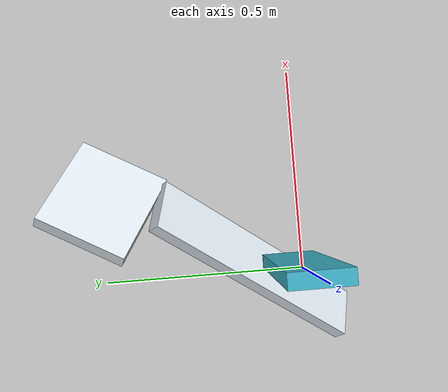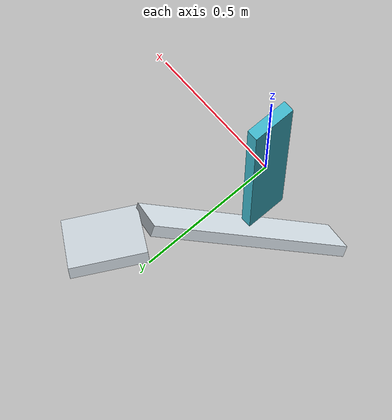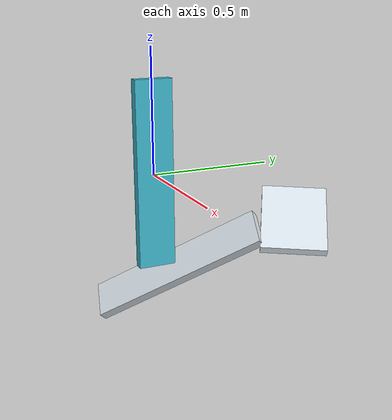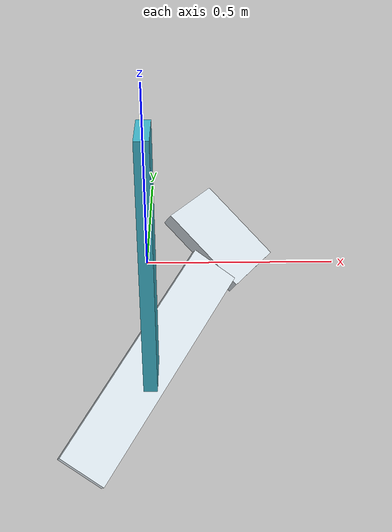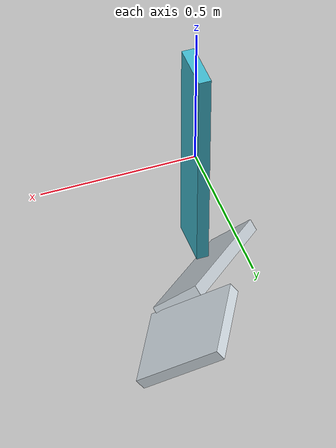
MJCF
<mujoco model="criatura">
  <compiler angle="degree" autolimits="true"/>
  <option timestep="0.002083" gravity="0 0 0" integrator="implicitfast"/>
  <default>
    <geom type="box" density="300.0" rgba="0.85 0.89 0.92 1"/>
    <joint type="hinge"/>
    <motor ctrlrange="-1 1"/>
  </default>
  <worldbody>
    <body name="p0_n0" pos="0.00000 0.00000 0.00000" quat="1.000000 0.000000 0.000000 0.000000">
      <freejoint name="raiz"/>
      <geom name="g_p0_n0" size="0.02000 0.07576 0.37874" rgba="0.25 0.72 0.8 1"/>
      <body name="p1_n0" pos="-0.00801 0.09553 -0.40596" quat="0.064800 0.590986 0.628201 -0.501896">
        <joint name="p1_n0_j0" axis="0.0000 0.0000 1.0000" pos="-0.04036 0 0" range="-86.16 86.16" damping="5.7389"/>
        <joint name="p1_n0_j1" axis="1.0000 0.0000 0.0000" pos="-0.04036 0 0" range="-86.16 86.16" damping="5.7389"/>
        <geom name="g_p1_n0" size="0.02036 0.07711 0.38549"/>
        <body name="p2_n1" pos="0.08388 -0.02264 -0.51512" quat="-0.086494 0.853354 0.086512 -0.506776">
          <geom name="g_p2_n1" size="0.13252 0.15280 0.01930"/>
        </body>
      </body>
    </body>
  </worldbody>
  <actuator>
    <motor name="m_p1_n0_j0" joint="p1_n0_j0" gear="114.7779"/>
    <motor name="m_p1_n0_j1" joint="p1_n0_j1" gear="114.7779"/>
  </actuator>
</mujoco>
